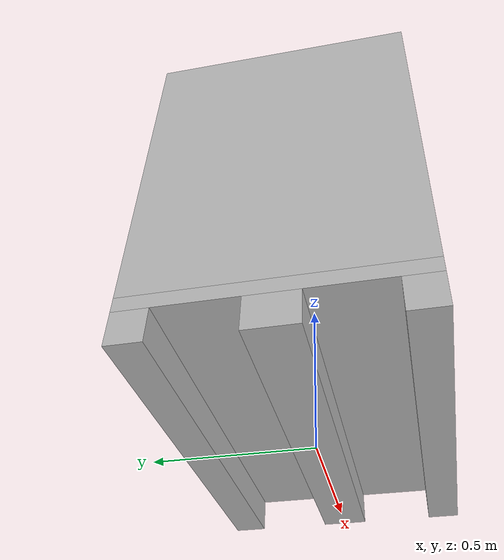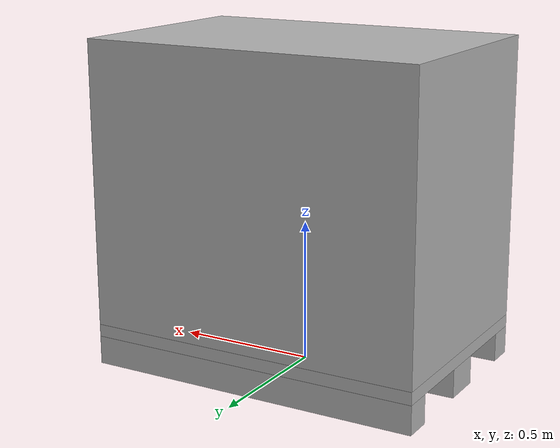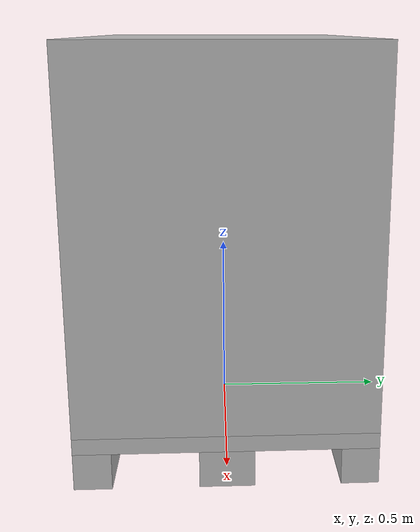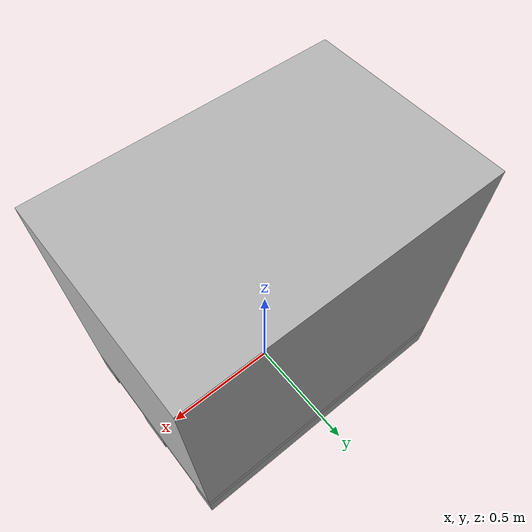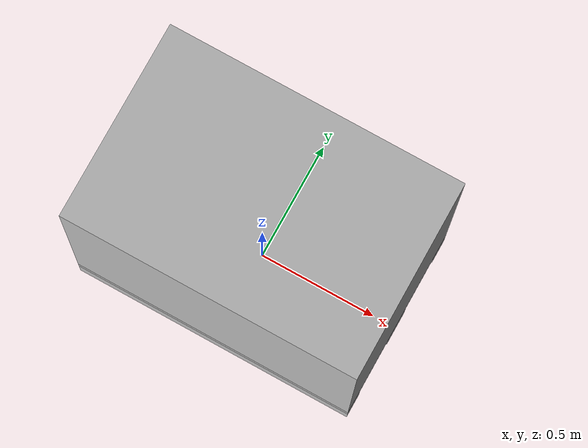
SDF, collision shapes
<?xml version="1.0"?>
<sdf version="1.7">
    <model name="euro_pallet_w_stacked_boxes">
        <static>false</static>

        <link name="link">
            <!--
            Avoid self-collision between the five collision geometries
            inside this link. Default is false, but set explicitly
            to document the intention.
            -->
            <self_collide>false</self_collide>

            <visual name="visual">
                <geometry>
                    <mesh>
                        <uri>model://euro_pallet_w_stacked_boxes/meshes/euro_pallet_w_stacked_boxes.dae</uri>
                        <scale>1 1 1</scale>
                    </mesh>
                </geometry>
                <pose relative_to="link">0 0 0 0 0 0</pose>
            </visual>

            <collision name="pallet_top_collision">
                <geometry>
                    <box>
                        <size>1.20 0.8 0.044</size>
                    </box>
                </geometry>
                <pose relative_to="link">0 0 0.122 0 0 0</pose>
            </collision>

            <collision name="pallet_center_collision">
                <geometry>
                    <box>
                        <size>1.20 0.145 0.10</size>
                    </box>
                </geometry>
                <pose relative_to="link">0 0 0.05 0 0 0</pose>
                <surface>
                    <friction>
                        <ode>
                            <mu>1.0</mu>
                            <mu2>1.0</mu2>
                        </ode>
                    </friction>
                    <contact>
                        <ode>
                            <kp>10000000</kp>
                            <kd>1</kd>
                            <min_depth>0.001</min_depth>
                            <max_vel>0.1</max_vel>
                        </ode>
                    </contact>
                </surface>
            </collision>

            <!--
            Purpose : left stringer (wood on concrete).
            Same parameters as the central stringer.
            -->
            <collision name="pallet_left_collision">
                <geometry>
                    <box>
                        <size>1.20 0.10 0.10</size>
                    </box>
                </geometry>
                <pose relative_to="link">0 0.35 0.05 0 0 0</pose>
                <surface>
                    <friction>
                        <ode>
                            <mu>1.0</mu>
                            <mu2>1.0</mu2>
                        </ode>
                    </friction>
                    <contact>
                        <ode>
                            <kp>10000000</kp>
                            <kd>1</kd>
                            <min_depth>0.001</min_depth>
                            <max_vel>0.1</max_vel>
                        </ode>
                    </contact>
                </surface>
            </collision>

            <!--
            Purpose : right stringer (wood on concrete).
            Identical friction/contact parameters.
            -->
            <collision name="pallet_right_collision">
                <geometry>
                    <box>
                        <size>1.20 0.10 0.10</size>
                    </box>
                </geometry>
                <pose relative_to="link">0 -0.35 0.05 0 0 0</pose>
                <surface>
                    <friction>
                        <ode>
                            <mu>1.0</mu>
                            <mu2>1.0</mu2>
                        </ode>
                    </friction>
                    <contact>
                        <ode>
                            <kp>10000000</kp>
                            <kd>1</kd>
                            <min_depth>0.001</min_depth>
                            <max_vel>0.1</max_vel>
                        </ode>
                    </contact>
                </surface>
            </collision>

            <collision name="boxes_collision">
                <geometry>
                    <box>
                        <size>1.20 0.8 1</size>
                    </box>
                </geometry>
                <!--
                z = euro_pallet.size_z + box.size_z/2 = 0.144 + 1/2 = 0.144 + 0.5 = 0.644 m
                -->
                <pose relative_to="link">0 0 0.644 0 0 0</pose>
                <surface>
                    <friction>
                        <ode>
                            <mu>1.0</mu>
                            <mu2>1.0</mu2>
                        </ode>
                    </friction>
                    <contact>
                        <ode>
                            <kp>10000000</kp>
                            <kd>1</kd>
                            <min_depth>0.001</min_depth>
                            <max_vel>0.1</max_vel>
                        </ode>
                    </contact>
                </surface>
            </collision>

            <!-- Mass and inertia for the combined pallet + boxes -->
            <inertial>
                <mass>200.0</mass>
                <inertia>
                    <ixx>16.2417</ixx>
                    <ixy>0.0</ixy>
                    <ixz>0.0</ixz>
                    <iyy>22.9083</iyy>
                    <iyz>0.0</iyz>
                    <izz>17.3333</izz>
                </inertia>
                <!--
                z = whole_body.size_z/2 = (0.144 + 1)/2 = 0.572 m.
                -->
                <pose>0 0 0.572 0 0 0</pose>
            </inertial>
        </link>

        <!-- Optional pose-publisher plugin (disabled) -->
    </model>
</sdf>
